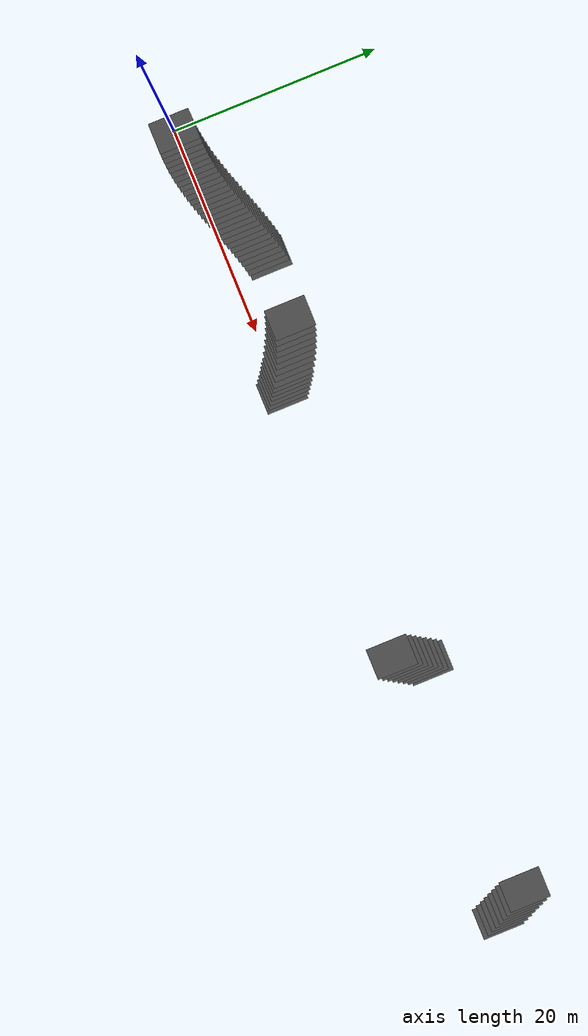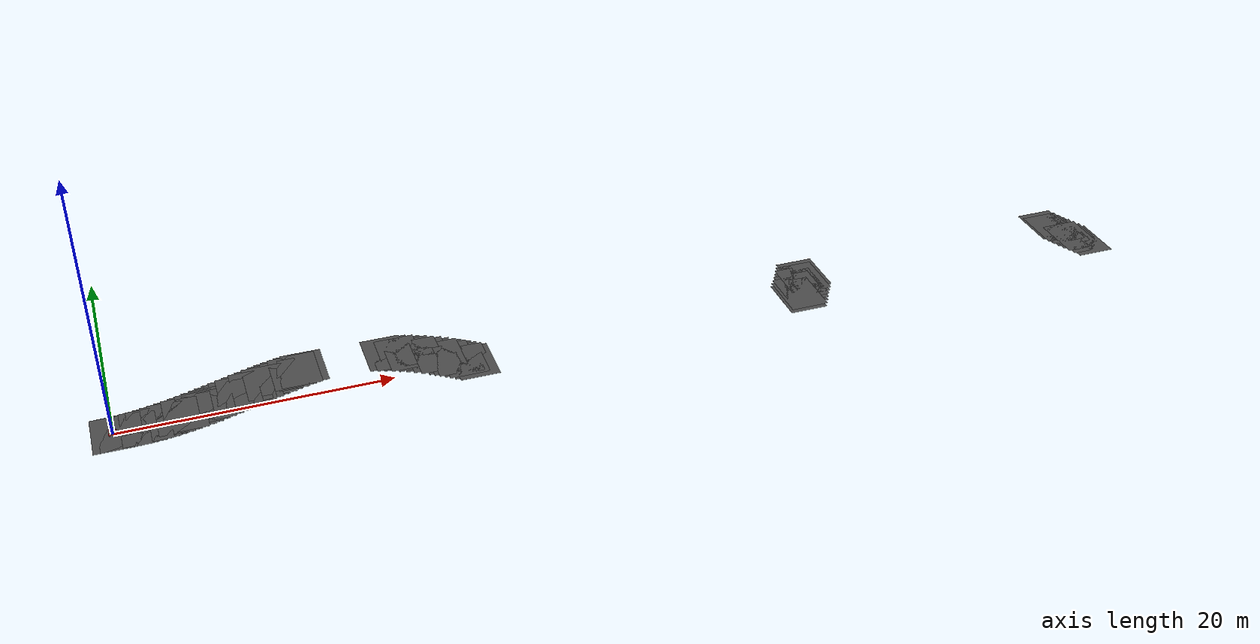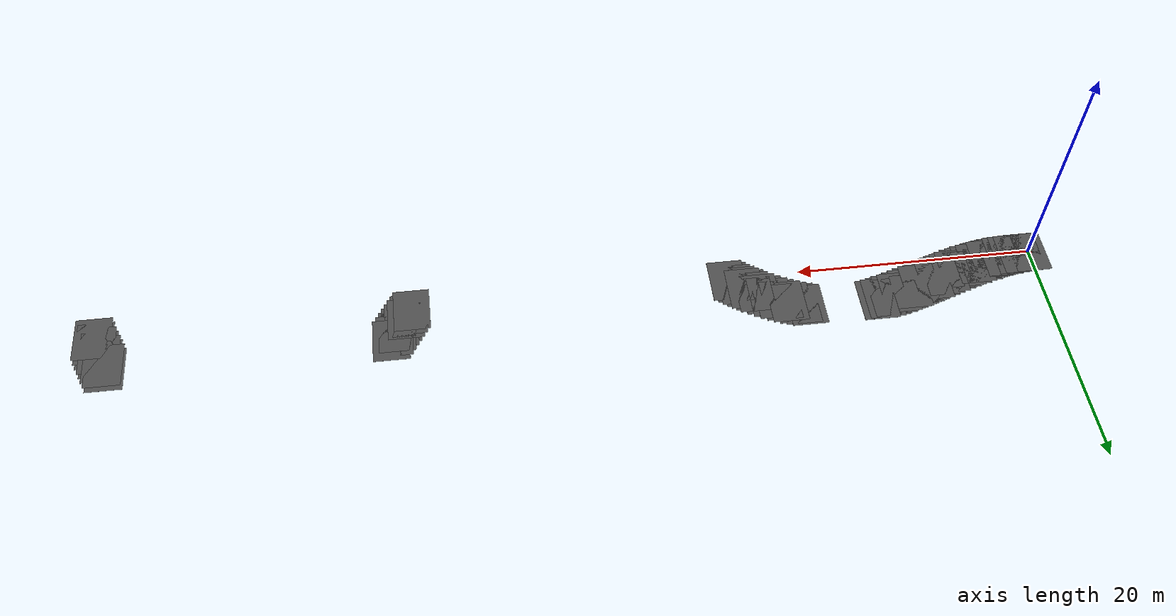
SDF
<sdf version="1.7">
 <world name="default">
  <model name="steer_bot">
   <link name="base_link">
    <inertial>
     <pose>0.00098 0.00098 0.001961 0 -0 0</pose>
     <mass>5.10001</mass>
     <inertia>
      <ixx>0.0429143</ixx>
      <ixy>-0.000245099</ixy>
      <ixz>-0.000490026</ixz>
      <iyy>0.109581</iyy>
      <iyz>-0.000490194</iyz>
      <izz>0.142158</izz>
     </inertia>
    </inertial>
    <collision name="base_link_collision"><geometry><box><size>0.5 0.3 0.1</size></box></geometry></collision>
    <collision name="base_link_fixed_joint_lump__camera_link_collision_1">
     <pose>-0.1 0 0.17 0 -0 0</pose>
     <geometry><box><size>0.05 0.05 0.05</size></box></geometry>
    </collision>
    <collision name="base_link_fixed_joint_lump__imu_box_collision_2">
     <pose>0 0 0.05 0 -0 0</pose>
     <geometry><box><size>0.05 0.05 0.05</size></box></geometry>
    </collision>
    <visual name="base_link_visual">
     <geometry><box><size>0.5 0.3 0.1</size></box></geometry>
     <material>
      <script><name>Gazebo/Green</name><uri>file://media/materials/scripts/gazebo.material</uri></script>
     </material>
    </visual>
    <visual name="base_link_fixed_joint_lump__camera_link_visual_1">
     <pose>-0.1 0 0.17 0 -0 0</pose>
     <geometry><box><size>0.05 0.05 0.05</size></box></geometry>
    </visual>
    <visual name="base_link_fixed_joint_lump__imu_box_visual_2">
     <pose>0 0 0.05 0 -0 0</pose>
     <geometry><box><size>0.05 0.05 0.05</size></box></geometry>
     <material>
      <script><name>Gazebo/White</name><uri>file://media/materials/scripts/gazebo.material</uri></script>
     </material>
    </visual>
    <sensor name="camera1" type="camera">
     <update_rate>30</update_rate>
     <camera name="head">
      <horizontal_fov>1.39626</horizontal_fov>
      <image><width>800</width><height>800</height><format>R8G8B8</format></image>
      <clip><near>0.02</near><far>300</far></clip>
      <noise><type>gaussian</type><mean>0</mean><stddev>0.007</stddev></noise>
     </camera>
     <plugin name="camera_controller" filename="libgazebo_ros_camera.so">
      <alwaysOn>1</alwaysOn>
      <updateRate>0.0</updateRate>
      <cameraName>rrbot/camera1</cameraName>
      <imageTopicName>image_raw</imageTopicName>
      <cameraInfoTopicName>camera_info</cameraInfoTopicName>
      <frameName>camera_link</frameName>
      <hackBaseline>0.07</hackBaseline>
      <distortionK1>0.0</distortionK1>
      <distortionK2>0.0</distortionK2>
      <distortionK3>0.0</distortionK3>
      <distortionT1>0.0</distortionT1>
      <distortionT2>0.0</distortionT2>
      <robotNamespace>/steer_bot/</robotNamespace>
     </plugin>
     <pose>-0.1 0 0.17 0 -0 0</pose>
    </sensor>
    <sensor name="imu_sensor" type="imu">
     <always_on>1</always_on>
     <update_rate>100</update_rate>
     <visualize>1</visualize>
     <topic>__default_topic__</topic>
     <plugin name="imu_plugin" filename="libgazebo_ros_imu_sensor.so">
      <topicName>imu</topicName>
      <bodyName>imu_link</bodyName>
      <updateRateHZ>10.0</updateRateHZ>
      <gaussianNoise>2.89e-08</gaussianNoise>
      <xyzOffset>0 0 0</xyzOffset>
      <rpyOffset>0 0 0</rpyOffset>
      <frameName>imu_link</frameName>
      <inertialOrientationAsReference>0</inertialOrientationAsReference>
      <robotNamespace>/steer_bot/</robotNamespace>
     </plugin>
     <pose>0 0 0.05 0 -0 0</pose>
    </sensor>
   </link>
   <joint name="front_left_steer_joint" type="revolute">
    <pose relative_to="base_link">0.2 0.2 0.12 0 -0 0</pose>
    <parent>base_link</parent>
    <child>front_left_steer_link</child>
    <axis>
     <xyz>0 0 1</xyz>
     <limit><lower>-0.785398</lower><upper>0.785398</upper><effort>10</effort><velocity>5</velocity></limit>
     <dynamics><spring_reference>0</spring_reference><spring_stiffness>0</spring_stiffness></dynamics>
    </axis>
   </joint>
   <link name="front_left_steer_link">
    <pose relative_to="front_left_steer_joint">0 0 0 0 -0 0</pose>
    <inertial>
     <mass>1</mass>
     <inertia>
      <ixx>0.000658333</ixx>
      <ixy>0</ixy>
      <ixz>0</ixz>
      <iyy>0.000658333</iyy>
      <iyz>0</iyz>
      <izz>0.00125</izz>
     </inertia>
    </inertial>
    <collision name="front_left_steer_link_collision">
     <geometry><cylinder><length>0.02</length><radius>0.05</radius></cylinder></geometry>
    </collision>
    <visual name="front_left_steer_link_visual">
     <geometry><cylinder><length>0.02</length><radius>0.05</radius></cylinder></geometry>
     <material>
      <script><name>Gazebo/Blue</name><uri>file://media/materials/scripts/gazebo.material</uri></script>
     </material>
    </visual>
   </link>
   <joint name="front_left_wheel_joint" type="revolute">
    <pose relative_to="front_left_steer_link">0 0 -0.12 -1.5708 0 0</pose>
    <parent>front_left_steer_link</parent>
    <child>front_left_wheel_link</child>
    <axis>
     <xyz>0 0 1</xyz>
     <limit><lower>-1e+16</lower><upper>1e+16</upper></limit>
     <dynamics><spring_reference>0</spring_reference><spring_stiffness>0</spring_stiffness></dynamics>
    </axis>
   </joint>
   <link name="front_left_wheel_link">
    <pose relative_to="front_left_wheel_joint">0 0 0 0 -0 0</pose>
    <inertial>
     <mass>1</mass>
     <inertia>
      <ixx>0.00303333</ixx>
      <ixy>0</ixy>
      <ixz>0</ixz>
      <iyy>0.00303333</iyy>
      <iyz>0</iyz>
      <izz>0.005</izz>
     </inertia>
    </inertial>
    <collision name="front_left_wheel_link_collision">
     <geometry><cylinder><length>0.08</length><radius>0.1</radius></cylinder></geometry>
    </collision>
    <visual name="front_left_wheel_link_visual">
     <geometry><cylinder><length>0.08</length><radius>0.1</radius></cylinder></geometry>
     <material>
      <script><name>Gazebo/Red</name><uri>file://media/materials/scripts/gazebo.material</uri></script>
     </material>
    </visual>
   </link>
   <joint name="front_right_steer_joint" type="revolute">
    <pose relative_to="base_link">0.2 -0.2 0.12 0 -0 0</pose>
    <parent>base_link</parent>
    <child>front_right_steer_link</child>
    <axis>
     <xyz>0 0 1</xyz>
     <limit><lower>-0.785398</lower><upper>0.785398</upper><effort>10</effort><velocity>5</velocity></limit>
     <dynamics><spring_reference>0</spring_reference><spring_stiffness>0</spring_stiffness></dynamics>
    </axis>
   </joint>
   <link name="front_right_steer_link">
    <pose relative_to="front_right_steer_joint">0 0 0 0 -0 0</pose>
    <inertial>
     <mass>1</mass>
     <inertia>
      <ixx>0.000658333</ixx>
      <ixy>0</ixy>
      <ixz>0</ixz>
      <iyy>0.000658333</iyy>
      <iyz>0</iyz>
      <izz>0.00125</izz>
     </inertia>
    </inertial>
    <collision name="front_right_steer_link_collision">
     <geometry><cylinder><length>0.02</length><radius>0.05</radius></cylinder></geometry>
    </collision>
    <visual name="front_right_steer_link_visual">
     <geometry><cylinder><length>0.02</length><radius>0.05</radius></cylinder></geometry>
     <material>
      <script><name>Gazebo/Blue</name><uri>file://media/materials/scripts/gazebo.material</uri></script>
     </material>
    </visual>
   </link>
   <joint name="front_right_wheel_joint" type="revolute">
    <pose relative_to="front_right_steer_link">0 0 -0.12 -1.5708 0 0</pose>
    <parent>front_right_steer_link</parent>
    <child>front_right_wheel_link</child>
    <axis>
     <xyz>0 0 1</xyz>
     <limit><lower>-1e+16</lower><upper>1e+16</upper></limit>
     <dynamics><spring_reference>0</spring_reference><spring_stiffness>0</spring_stiffness></dynamics>
    </axis>
   </joint>
   <link name="front_right_wheel_link">
    <pose relative_to="front_right_wheel_joint">0 0 0 0 -0 0</pose>
    <inertial>
     <mass>1</mass>
     <inertia>
      <ixx>0.00303333</ixx>
      <ixy>0</ixy>
      <ixz>0</ixz>
      <iyy>0.00303333</iyy>
      <iyz>0</iyz>
      <izz>0.005</izz>
     </inertia>
    </inertial>
    <collision name="front_right_wheel_link_collision">
     <geometry><cylinder><length>0.08</length><radius>0.1</radius></cylinder></geometry>
    </collision>
    <visual name="front_right_wheel_link_visual">
     <geometry><cylinder><length>0.08</length><radius>0.1</radius></cylinder></geometry>
     <material>
      <script><name>Gazebo/Red</name><uri>file://media/materials/scripts/gazebo.material</uri></script>
     </material>
    </visual>
   </link>
   <joint name="front_steer_joint" type="revolute">
    <pose relative_to="base_link">0.2 0 0.12 0 -0 0</pose>
    <parent>base_link</parent>
    <child>front_steer_link</child>
    <axis>
     <xyz>0 0 1</xyz>
     <limit><lower>-3.14159</lower><upper>3.14159</upper><effort>10</effort><velocity>5</velocity></limit>
     <dynamics><spring_reference>0</spring_reference><spring_stiffness>0</spring_stiffness></dynamics>
    </axis>
   </joint>
   <link name="front_steer_link">
    <pose relative_to="front_steer_joint">0 0 0 0 -0 0</pose>
    <inertial>
     <mass>1</mass>
     <inertia>
      <ixx>0.000658333</ixx>
      <ixy>0</ixy>
      <ixz>0</ixz>
      <iyy>0.000658333</iyy>
      <iyz>0</iyz>
      <izz>0.00125</izz>
     </inertia>
    </inertial>
    <collision name="front_steer_link_collision">
     <geometry><cylinder><length>0.02</length><radius>0.05</radius></cylinder></geometry>
    </collision>
    <visual name="front_steer_link_visual">
     <geometry><cylinder><length>0.02</length><radius>0.05</radius></cylinder></geometry>
     <material>
      <script><name>Gazebo/Yellow</name><uri>file://media/materials/scripts/gazebo.material</uri></script>
     </material>
    </visual>
   </link>
   <joint name="rear_left_wheel_joint" type="revolute">
    <pose relative_to="base_link">-0.2 0.2 0 -1.5708 0 0</pose>
    <parent>base_link</parent>
    <child>rear_left_wheel_link</child>
    <axis>
     <xyz>0 0 1</xyz>
     <limit><lower>-1e+16</lower><upper>1e+16</upper></limit>
     <dynamics><spring_reference>0</spring_reference><spring_stiffness>0</spring_stiffness></dynamics>
    </axis>
   </joint>
   <link name="rear_left_wheel_link">
    <pose relative_to="rear_left_wheel_joint">0 0 0 0 -0 0</pose>
    <inertial>
     <mass>1</mass>
     <inertia>
      <ixx>0.00303333</ixx>
      <ixy>0</ixy>
      <ixz>0</ixz>
      <iyy>0.00303333</iyy>
      <iyz>0</iyz>
      <izz>0.005</izz>
     </inertia>
    </inertial>
    <collision name="rear_left_wheel_link_collision">
     <geometry><cylinder><length>0.08</length><radius>0.1</radius></cylinder></geometry>
    </collision>
    <visual name="rear_left_wheel_link_visual">
     <geometry><cylinder><length>0.08</length><radius>0.1</radius></cylinder></geometry>
     <material>
      <script><name>Gazebo/Red</name><uri>file://media/materials/scripts/gazebo.material</uri></script>
     </material>
    </visual>
   </link>
   <joint name="rear_right_wheel_joint" type="revolute">
    <pose relative_to="base_link">-0.2 -0.2 0 -1.5708 0 0</pose>
    <parent>base_link</parent>
    <child>rear_right_wheel_link</child>
    <axis>
     <xyz>0 0 1</xyz>
     <limit><lower>-1e+16</lower><upper>1e+16</upper></limit>
     <dynamics><spring_reference>0</spring_reference><spring_stiffness>0</spring_stiffness></dynamics>
    </axis>
   </joint>
   <link name="rear_right_wheel_link">
    <pose relative_to="rear_right_wheel_joint">0 0 0 0 -0 0</pose>
    <inertial>
     <mass>1</mass>
     <inertia>
      <ixx>0.00303333</ixx>
      <ixy>0</ixy>
      <ixz>0</ixz>
      <iyy>0.00303333</iyy>
      <iyz>0</iyz>
      <izz>0.005</izz>
     </inertia>
    </inertial>
    <collision name="rear_right_wheel_link_collision">
     <geometry><cylinder><length>0.08</length><radius>0.1</radius></cylinder></geometry>
    </collision>
    <visual name="rear_right_wheel_link_visual">
     <geometry><cylinder><length>0.08</length><radius>0.1</radius></cylinder></geometry>
     <material>
      <script><name>Gazebo/Red</name><uri>file://media/materials/scripts/gazebo.material</uri></script>
     </material>
    </visual>
   </link>
   <joint name="rear_wheel_joint" type="revolute">
    <pose relative_to="base_link">-0.2 0 0 -1.5708 0 0</pose>
    <parent>base_link</parent>
    <child>rear_wheel_link</child>
    <axis>
     <xyz>0 0 1</xyz>
     <limit><lower>-1e+16</lower><upper>1e+16</upper></limit>
     <dynamics><spring_reference>0</spring_reference><spring_stiffness>0</spring_stiffness></dynamics>
    </axis>
   </joint>
   <link name="rear_wheel_link">
    <pose relative_to="rear_wheel_joint">0 0 0 0 -0 0</pose>
    <inertial>
     <mass>0.03125</mass>
     <inertia>
      <ixx>9.04948e-06</ixx>
      <ixy>0</ixy>
      <ixz>0</ixz>
      <iyy>9.04948e-06</iyy>
      <iyz>0</iyz>
      <izz>9.76563e-06</izz>
     </inertia>
    </inertial>
    <collision name="rear_wheel_link_collision">
     <geometry><cylinder><length>0.04</length><radius>0.025</radius></cylinder></geometry>
    </collision>
    <visual name="rear_wheel_link_visual">
     <geometry><cylinder><length>0.04</length><radius>0.025</radius></cylinder></geometry>
     <material>
      <script><name>Gazebo/Yellow</name><uri>file://media/materials/scripts/gazebo.material</uri></script>
     </material>
    </visual>
   </link>
   <static>0</static>
   <plugin name="gazebo_ros_control" filename="libgazebo_ros_control.so">
    <robotNamespace>/steer_bot</robotNamespace>
    <robotSimType>steer_bot_hardware_gazebo/SteerBotHardwareGazebo</robotSimType>
    <legacyModeNS>0</legacyModeNS>
   </plugin>
   <plugin name="p3d_base_controller" filename="libgazebo_ros_p3d.so">
    <alwaysOn>1</alwaysOn>
    <updateRate>50.0</updateRate>
    <bodyName>base_link</bodyName>
    <topicName>pose_ground_truth</topicName>
    <gaussianNoise>0.00</gaussianNoise>
    <frameName>world</frameName>
    <xyzOffsets>0 0 0</xyzOffsets>
    <rpyOffsets>0 0 0</rpyOffsets>
    <robotNamespace>/steer_bot/</robotNamespace>
   </plugin>
   <pose>-0.001108 -0.00022 0.105001 0 -2e-06 -0.000346</pose>
  </model>
  <model name="roadSegment_0_0">
   <static>1</static>
   <link name="link">
    <collision name="collision"><geometry><box><size>3 4 0.01</size></box></geometry></collision>
    <visual name="visual">
     <cast_shadows>0</cast_shadows>
     <geometry><box><size>3 4 0.01</size></box></geometry>
     <material>
      <script>
       <uri>model://asphalt_plane/materials/scripts</uri>
       <uri>model://asphalt_plane/materials/textures</uri>
       <name>vrc/asphalt</name>
      </script>
     </material>
    </visual>
   </link>
  </model>
  <model name="roadSegment_0_1">
   <static>1</static>
   <link name="link">
    <collision name="collision"><geometry><box><size>3 4 0.01</size></box></geometry></collision>
    <visual name="visual">
     <cast_shadows>0</cast_shadows>
     <geometry><box><size>3 4 0.01</size></box></geometry>
     <material>
      <script>
       <uri>model://asphalt_plane/materials/scripts</uri>
       <uri>model://asphalt_plane/materials/textures</uri>
       <name>vrc/asphalt</name>
      </script>
     </material>
    </visual>
   </link>
   <pose>0.5 0.01497 0 0 -0 0</pose>
  </model>
  <model name="roadSegment_1_0">
   <static>1</static>
   <link name="link">
    <collision name="collision"><geometry><box><size>3 4 0.01</size></box></geometry></collision>
    <visual name="visual">
     <cast_shadows>0</cast_shadows>
     <geometry><box><size>3 4 0.01</size></box></geometry>
     <material>
      <script>
       <uri>model://asphalt_plane/materials/scripts</uri>
       <uri>model://asphalt_plane/materials/textures</uri>
       <name>vrc/asphalt</name>
      </script>
     </material>
    </visual>
   </link>
   <pose>1 0.02994 0 0 -0 0</pose>
  </model>
  <model name="roadSegment_1_1">
   <static>1</static>
   <link name="link">
    <collision name="collision"><geometry><box><size>3 4 0.01</size></box></geometry></collision>
    <visual name="visual">
     <cast_shadows>0</cast_shadows>
     <geometry><box><size>3 4 0.01</size></box></geometry>
     <material>
      <script>
       <uri>model://asphalt_plane/materials/scripts</uri>
       <uri>model://asphalt_plane/materials/textures</uri>
       <name>vrc/asphalt</name>
      </script>
     </material>
    </visual>
   </link>
   <pose>1.5 0.074419 0 0 -0 0</pose>
  </model>
  <model name="roadSegment_2_0">
   <static>1</static>
   <link name="link">
    <collision name="collision"><geometry><box><size>3 4 0.01</size></box></geometry></collision>
    <visual name="visual">
     <cast_shadows>0</cast_shadows>
     <geometry><box><size>3 4 0.01</size></box></geometry>
     <material>
      <script>
       <uri>model://asphalt_plane/materials/scripts</uri>
       <uri>model://asphalt_plane/materials/textures</uri>
       <name>vrc/asphalt</name>
      </script>
     </material>
    </visual>
   </link>
   <pose>2 0.118898 0 0 -0 0</pose>
  </model>
  <model name="roadSegment_2_1">
   <static>1</static>
   <link name="link">
    <collision name="collision"><geometry><box><size>3 4 0.01</size></box></geometry></collision>
    <visual name="visual">
     <cast_shadows>0</cast_shadows>
     <geometry><box><size>3 4 0.01</size></box></geometry>
     <material>
      <script>
       <uri>model://asphalt_plane/materials/scripts</uri>
       <uri>model://asphalt_plane/materials/textures</uri>
       <name>vrc/asphalt</name>
      </script>
     </material>
    </visual>
   </link>
   <pose>2.5 0.191602 0 0 -0 0</pose>
  </model>
  <model name="roadSegment_3_0">
   <static>1</static>
   <link name="link">
    <collision name="collision"><geometry><box><size>3 4 0.01</size></box></geometry></collision>
    <visual name="visual">
     <cast_shadows>0</cast_shadows>
     <geometry><box><size>3 4 0.01</size></box></geometry>
     <material>
      <script>
       <uri>model://asphalt_plane/materials/scripts</uri>
       <uri>model://asphalt_plane/materials/textures</uri>
       <name>vrc/asphalt</name>
      </script>
     </material>
    </visual>
   </link>
   <pose>3 0.264307 0 0 -0 0</pose>
  </model>
  <model name="roadSegment_3_1">
   <static>1</static>
   <link name="link">
    <collision name="collision"><geometry><box><size>3 4 0.01</size></box></geometry></collision>
    <visual name="visual">
     <cast_shadows>0</cast_shadows>
     <geometry><box><size>3 4 0.01</size></box></geometry>
     <material>
      <script>
       <uri>model://asphalt_plane/materials/scripts</uri>
       <uri>model://asphalt_plane/materials/textures</uri>
       <name>vrc/asphalt</name>
      </script>
     </material>
    </visual>
   </link>
   <pose>3.5 0.363128 0 0 -0 0</pose>
  </model>
  <model name="roadSegment_4_0">
   <static>1</static>
   <link name="link">
    <collision name="collision"><geometry><box><size>3 4 0.01</size></box></geometry></collision>
    <visual name="visual">
     <cast_shadows>0</cast_shadows>
     <geometry><box><size>3 4 0.01</size></box></geometry>
     <material>
      <script>
       <uri>model://asphalt_plane/materials/scripts</uri>
       <uri>model://asphalt_plane/materials/textures</uri>
       <name>vrc/asphalt</name>
      </script>
     </material>
    </visual>
   </link>
   <pose>4 0.46195 0 0 -0 0</pose>
  </model>
  <model name="roadSegment_4_1">
   <static>1</static>
   <link name="link">
    <collision name="collision"><geometry><box><size>3 4 0.01</size></box></geometry></collision>
    <visual name="visual">
     <cast_shadows>0</cast_shadows>
     <geometry><box><size>3 4 0.01</size></box></geometry>
     <material>
      <script>
       <uri>model://asphalt_plane/materials/scripts</uri>
       <uri>model://asphalt_plane/materials/textures</uri>
       <name>vrc/asphalt</name>
      </script>
     </material>
    </visual>
   </link>
   <pose>4.5 0.584 0 0 -0 0</pose>
  </model>
  <model name="roadSegment_5_0">
   <static>1</static>
   <link name="link">
    <collision name="collision"><geometry><box><size>3 4 0.01</size></box></geometry></collision>
    <visual name="visual">
     <cast_shadows>0</cast_shadows>
     <geometry><box><size>3 4 0.01</size></box></geometry>
     <material>
      <script>
       <uri>model://asphalt_plane/materials/scripts</uri>
       <uri>model://asphalt_plane/materials/textures</uri>
       <name>vrc/asphalt</name>
      </script>
     </material>
    </visual>
   </link>
   <pose>5 0.706051 0 0 -0 0</pose>
  </model>
  <model name="roadSegment_5_1">
   <static>1</static>
   <link name="link">
    <collision name="collision"><geometry><box><size>3 4 0.01</size></box></geometry></collision>
    <visual name="visual">
     <cast_shadows>0</cast_shadows>
     <geometry><box><size>3 4 0.01</size></box></geometry>
     <material>
      <script>
       <uri>model://asphalt_plane/materials/scripts</uri>
       <uri>model://asphalt_plane/materials/textures</uri>
       <name>vrc/asphalt</name>
      </script>
     </material>
    </visual>
   </link>
   <pose>5.5 0.847726 0 0 -0 0</pose>
  </model>
  <model name="roadSegment_6_0">
   <static>1</static>
   <link name="link">
    <collision name="collision"><geometry><box><size>3 4 0.01</size></box></geometry></collision>
    <visual name="visual">
     <cast_shadows>0</cast_shadows>
     <geometry><box><size>3 4 0.01</size></box></geometry>
     <material>
      <script>
       <uri>model://asphalt_plane/materials/scripts</uri>
       <uri>model://asphalt_plane/materials/textures</uri>
       <name>vrc/asphalt</name>
      </script>
     </material>
    </visual>
   </link>
   <pose>6 0.989402 0 0 -0 0</pose>
  </model>
  <model name="roadSegment_6_1">
   <static>1</static>
   <link name="link">
    <collision name="collision"><geometry><box><size>3 4 0.01</size></box></geometry></collision>
    <visual name="visual">
     <cast_shadows>0</cast_shadows>
     <geometry><box><size>3 4 0.01</size></box></geometry>
     <material>
      <script>
       <uri>model://asphalt_plane/materials/scripts</uri>
       <uri>model://asphalt_plane/materials/textures</uri>
       <name>vrc/asphalt</name>
      </script>
     </material>
    </visual>
   </link>
   <pose>6.5 1.14646 0 0 -0 0</pose>
  </model>
  <model name="roadSegment_7_0">
   <static>1</static>
   <link name="link">
    <collision name="collision"><geometry><box><size>3 4 0.01</size></box></geometry></collision>
    <visual name="visual">
     <cast_shadows>0</cast_shadows>
     <geometry><box><size>3 4 0.01</size></box></geometry>
     <material>
      <script>
       <uri>model://asphalt_plane/materials/scripts</uri>
       <uri>model://asphalt_plane/materials/textures</uri>
       <name>vrc/asphalt</name>
      </script>
     </material>
    </visual>
   </link>
   <pose>7 1.30352 0 0 -0 0</pose>
  </model>
  <model name="roadSegment_7_1">
   <static>1</static>
   <link name="link">
    <collision name="collision"><geometry><box><size>3 4 0.01</size></box></geometry></collision>
    <visual name="visual">
     <cast_shadows>0</cast_shadows>
     <geometry><box><size>3 4 0.01</size></box></geometry>
     <material>
      <script>
       <uri>model://asphalt_plane/materials/scripts</uri>
       <uri>model://asphalt_plane/materials/textures</uri>
       <name>vrc/asphalt</name>
      </script>
     </material>
    </visual>
   </link>
   <pose>7.5 1.47117 0 0 -0 0</pose>
  </model>
  <model name="roadSegment_8_0">
   <static>1</static>
   <link name="link">
    <collision name="collision"><geometry><box><size>3 4 0.01</size></box></geometry></collision>
    <visual name="visual">
     <cast_shadows>0</cast_shadows>
     <geometry><box><size>3 4 0.01</size></box></geometry>
     <material>
      <script>
       <uri>model://asphalt_plane/materials/scripts</uri>
       <uri>model://asphalt_plane/materials/textures</uri>
       <name>vrc/asphalt</name>
      </script>
     </material>
    </visual>
   </link>
   <pose>8 1.63882 0 0 -0 0</pose>
  </model>
  <model name="roadSegment_8_1">
   <static>1</static>
   <link name="link">
    <collision name="collision"><geometry><box><size>3 4 0.01</size></box></geometry></collision>
    <visual name="visual">
     <cast_shadows>0</cast_shadows>
     <geometry><box><size>3 4 0.01</size></box></geometry>
     <material>
      <script>
       <uri>model://asphalt_plane/materials/scripts</uri>
       <uri>model://asphalt_plane/materials/textures</uri>
       <name>vrc/asphalt</name>
      </script>
     </material>
    </visual>
   </link>
   <pose>8.5 1.81184 0 0 -0 0</pose>
  </model>
  <model name="roadSegment_9_0">
   <static>1</static>
   <link name="link">
    <collision name="collision"><geometry><box><size>3 4 0.01</size></box></geometry></collision>
    <visual name="visual">
     <cast_shadows>0</cast_shadows>
     <geometry><box><size>3 4 0.01</size></box></geometry>
     <material>
      <script>
       <uri>model://asphalt_plane/materials/scripts</uri>
       <uri>model://asphalt_plane/materials/textures</uri>
       <name>vrc/asphalt</name>
      </script>
     </material>
    </visual>
   </link>
   <pose>9 1.98486 0 0 -0 0</pose>
  </model>
  <model name="roadSegment_9_1">
   <static>1</static>
   <link name="link">
    <collision name="collision"><geometry><box><size>3 4 0.01</size></box></geometry></collision>
    <visual name="visual">
     <cast_shadows>0</cast_shadows>
     <geometry><box><size>3 4 0.01</size></box></geometry>
     <material>
      <script>
       <uri>model://asphalt_plane/materials/scripts</uri>
       <uri>model://asphalt_plane/materials/textures</uri>
       <name>vrc/asphalt</name>
      </script>
     </material>
    </visual>
   </link>
   <pose>9.5 2.1577 0 0 -0 0</pose>
  </model>
  <model name="roadSegment_10_0">
   <static>1</static>
   <link name="link">
    <collision name="collision"><geometry><box><size>3 4 0.01</size></box></geometry></collision>
    <visual name="visual">
     <cast_shadows>0</cast_shadows>
     <geometry><box><size>3 4 0.01</size></box></geometry>
     <material>
      <script>
       <uri>model://asphalt_plane/materials/scripts</uri>
       <uri>model://asphalt_plane/materials/textures</uri>
       <name>vrc/asphalt</name>
      </script>
     </material>
    </visual>
   </link>
   <pose>10 2.33053 0 0 -0 0</pose>
  </model>
  <model name="roadSegment_10_1">
   <static>1</static>
   <link name="link">
    <collision name="collision"><geometry><box><size>3 4 0.01</size></box></geometry></collision>
    <visual name="visual">
     <cast_shadows>0</cast_shadows>
     <geometry><box><size>3 4 0.01</size></box></geometry>
     <material>
      <script>
       <uri>model://asphalt_plane/materials/scripts</uri>
       <uri>model://asphalt_plane/materials/textures</uri>
       <name>vrc/asphalt</name>
      </script>
     </material>
    </visual>
   </link>
   <pose>10.5 2.49743 0 0 -0 0</pose>
  </model>
  <model name="roadSegment_11_0">
   <static>1</static>
   <link name="link">
    <collision name="collision"><geometry><box><size>3 4 0.01</size></box></geometry></collision>
    <visual name="visual">
     <cast_shadows>0</cast_shadows>
     <geometry><box><size>3 4 0.01</size></box></geometry>
     <material>
      <script>
       <uri>model://asphalt_plane/materials/scripts</uri>
       <uri>model://asphalt_plane/materials/textures</uri>
       <name>vrc/asphalt</name>
      </script>
     </material>
    </visual>
   </link>
   <pose>11 2.66433 0 0 -0 0</pose>
  </model>
  <model name="roadSegment_11_1">
   <static>1</static>
   <link name="link">
    <collision name="collision"><geometry><box><size>3 4 0.01</size></box></geometry></collision>
    <visual name="visual">
     <cast_shadows>0</cast_shadows>
     <geometry><box><size>3 4 0.01</size></box></geometry>
     <material>
      <script>
       <uri>model://asphalt_plane/materials/scripts</uri>
       <uri>model://asphalt_plane/materials/textures</uri>
       <name>vrc/asphalt</name>
      </script>
     </material>
    </visual>
   </link>
   <pose>11.5 2.81946 0 0 -0 0</pose>
  </model>
  <model name="roadSegment_12_0">
   <static>1</static>
   <link name="link">
    <collision name="collision"><geometry><box><size>3 4 0.01</size></box></geometry></collision>
    <visual name="visual">
     <cast_shadows>0</cast_shadows>
     <geometry><box><size>3 4 0.01</size></box></geometry>
     <material>
      <script>
       <uri>model://asphalt_plane/materials/scripts</uri>
       <uri>model://asphalt_plane/materials/textures</uri>
       <name>vrc/asphalt</name>
      </script>
     </material>
    </visual>
   </link>
   <pose>12 2.9746 0 0 -0 0</pose>
  </model>
  <model name="roadSegment_12_1">
   <static>1</static>
   <link name="link">
    <collision name="collision"><geometry><box><size>3 4 0.01</size></box></geometry></collision>
    <visual name="visual">
     <cast_shadows>0</cast_shadows>
     <geometry><box><size>3 4 0.01</size></box></geometry>
     <material>
      <script>
       <uri>model://asphalt_plane/materials/scripts</uri>
       <uri>model://asphalt_plane/materials/textures</uri>
       <name>vrc/asphalt</name>
      </script>
     </material>
    </visual>
   </link>
   <pose>12.5 3.11222 0 0 -0 0</pose>
  </model>
  <model name="roadSegment_13_0">
   <static>1</static>
   <link name="link">
    <collision name="collision"><geometry><box><size>3 4 0.01</size></box></geometry></collision>
    <visual name="visual">
     <cast_shadows>0</cast_shadows>
     <geometry><box><size>3 4 0.01</size></box></geometry>
     <material>
      <script>
       <uri>model://asphalt_plane/materials/scripts</uri>
       <uri>model://asphalt_plane/materials/textures</uri>
       <name>vrc/asphalt</name>
      </script>
     </material>
    </visual>
   </link>
   <pose>13 3.24983 0 0 -0 0</pose>
  </model>
  <model name="roadSegment_13_1">
   <static>1</static>
   <link name="link">
    <collision name="collision"><geometry><box><size>3 4 0.01</size></box></geometry></collision>
    <visual name="visual">
     <cast_shadows>0</cast_shadows>
     <geometry><box><size>3 4 0.01</size></box></geometry>
     <material>
      <script>
       <uri>model://asphalt_plane/materials/scripts</uri>
       <uri>model://asphalt_plane/materials/textures</uri>
       <name>vrc/asphalt</name>
      </script>
     </material>
    </visual>
   </link>
   <pose>13.5 3.36436 0 0 -0 0</pose>
  </model>
  <model name="roadSegment_14_0">
   <static>1</static>
   <link name="link">
    <collision name="collision"><geometry><box><size>3 4 0.01</size></box></geometry></collision>
    <visual name="visual">
     <cast_shadows>0</cast_shadows>
     <geometry><box><size>3 4 0.01</size></box></geometry>
     <material>
      <script>
       <uri>model://asphalt_plane/materials/scripts</uri>
       <uri>model://asphalt_plane/materials/textures</uri>
       <name>vrc/asphalt</name>
      </script>
     </material>
    </visual>
   </link>
   <pose>14 3.47889 0 0 -0 0</pose>
  </model>
  <model name="roadSegment_20_0">
   <static>1</static>
   <link name="link">
    <collision name="collision"><geometry><box><size>3 4 0.01</size></box></geometry></collision>
    <visual name="visual">
     <cast_shadows>0</cast_shadows>
     <geometry><box><size>3 4 0.01</size></box></geometry>
     <material>
      <script>
       <uri>model://asphalt_plane/materials/scripts</uri>
       <uri>model://asphalt_plane/materials/textures</uri>
       <name>vrc/asphalt</name>
      </script>
     </material>
    </visual>
   </link>
   <pose>20 3.37377 0 0 -0 0</pose>
  </model>
  <model name="roadSegment_20_1">
   <static>1</static>
   <link name="link">
    <collision name="collision"><geometry><box><size>3 4 0.01</size></box></geometry></collision>
    <visual name="visual">
     <cast_shadows>0</cast_shadows>
     <geometry><box><size>3 4 0.01</size></box></geometry>
     <material>
      <script>
       <uri>model://asphalt_plane/materials/scripts</uri>
       <uri>model://asphalt_plane/materials/textures</uri>
       <name>vrc/asphalt</name>
      </script>
     </material>
    </visual>
   </link>
   <pose>20.5 3.21335 0 0 -0 0</pose>
  </model>
  <model name="roadSegment_21_0">
   <static>1</static>
   <link name="link">
    <collision name="collision"><geometry><box><size>3 4 0.01</size></box></geometry></collision>
    <visual name="visual">
     <cast_shadows>0</cast_shadows>
     <geometry><box><size>3 4 0.01</size></box></geometry>
     <material>
      <script>
       <uri>model://asphalt_plane/materials/scripts</uri>
       <uri>model://asphalt_plane/materials/textures</uri>
       <name>vrc/asphalt</name>
      </script>
     </material>
    </visual>
   </link>
   <pose>21 3.05293 0 0 -0 0</pose>
  </model>
  <model name="roadSegment_21_1">
   <static>1</static>
   <link name="link">
    <collision name="collision"><geometry><box><size>3 4 0.01</size></box></geometry></collision>
    <visual name="visual">
     <cast_shadows>0</cast_shadows>
     <geometry><box><size>3 4 0.01</size></box></geometry>
     <material>
      <script>
       <uri>model://asphalt_plane/materials/scripts</uri>
       <uri>model://asphalt_plane/materials/textures</uri>
       <name>vrc/asphalt</name>
      </script>
     </material>
    </visual>
   </link>
   <pose>21.5 2.84618 0 0 -0 0</pose>
  </model>
  <model name="roadSegment_22_0">
   <static>1</static>
   <link name="link">
    <collision name="collision"><geometry><box><size>3 4 0.01</size></box></geometry></collision>
    <visual name="visual">
     <cast_shadows>0</cast_shadows>
     <geometry><box><size>3 4 0.01</size></box></geometry>
     <material>
      <script>
       <uri>model://asphalt_plane/materials/scripts</uri>
       <uri>model://asphalt_plane/materials/textures</uri>
       <name>vrc/asphalt</name>
      </script>
     </material>
    </visual>
   </link>
   <pose>22 2.63943 0 0 -0 0</pose>
  </model>
  <model name="roadSegment_22_1">
   <static>1</static>
   <link name="link">
    <collision name="collision"><geometry><box><size>3 4 0.01</size></box></geometry></collision>
    <visual name="visual">
     <cast_shadows>0</cast_shadows>
     <geometry><box><size>3 4 0.01</size></box></geometry>
     <material>
      <script>
       <uri>model://asphalt_plane/materials/scripts</uri>
       <uri>model://asphalt_plane/materials/textures</uri>
       <name>vrc/asphalt</name>
      </script>
     </material>
    </visual>
   </link>
   <pose>22.5 2.38741 0 0 -0 0</pose>
  </model>
  <model name="roadSegment_23_0">
   <static>1</static>
   <link name="link">
    <collision name="collision"><geometry><box><size>3 4 0.01</size></box></geometry></collision>
    <visual name="visual">
     <cast_shadows>0</cast_shadows>
     <geometry><box><size>3 4 0.01</size></box></geometry>
     <material>
      <script>
       <uri>model://asphalt_plane/materials/scripts</uri>
       <uri>model://asphalt_plane/materials/textures</uri>
       <name>vrc/asphalt</name>
      </script>
     </material>
    </visual>
   </link>
   <pose>23 2.1354 0 0 -0 0</pose>
  </model>
  <model name="roadSegment_23_1">
   <static>1</static>
   <link name="link">
    <collision name="collision"><geometry><box><size>3 4 0.01</size></box></geometry></collision>
    <visual name="visual">
     <cast_shadows>0</cast_shadows>
     <geometry><box><size>3 4 0.01</size></box></geometry>
     <material>
      <script>
       <uri>model://asphalt_plane/materials/scripts</uri>
       <uri>model://asphalt_plane/materials/textures</uri>
       <name>vrc/asphalt</name>
      </script>
     </material>
    </visual>
   </link>
   <pose>23.5 1.84022 0 0 -0 0</pose>
  </model>
  <model name="roadSegment_24_0">
   <static>1</static>
   <link name="link">
    <collision name="collision"><geometry><box><size>3 4 0.01</size></box></geometry></collision>
    <visual name="visual">
     <cast_shadows>0</cast_shadows>
     <geometry><box><size>3 4 0.01</size></box></geometry>
     <material>
      <script>
       <uri>model://asphalt_plane/materials/scripts</uri>
       <uri>model://asphalt_plane/materials/textures</uri>
       <name>vrc/asphalt</name>
      </script>
     </material>
    </visual>
   </link>
   <pose>24 1.54504 0 0 -0 0</pose>
  </model>
  <model name="roadSegment_24_1">
   <static>1</static>
   <link name="link">
    <collision name="collision"><geometry><box><size>3 4 0.01</size></box></geometry></collision>
    <visual name="visual">
     <cast_shadows>0</cast_shadows>
     <geometry><box><size>3 4 0.01</size></box></geometry>
     <material>
      <script>
       <uri>model://asphalt_plane/materials/scripts</uri>
       <uri>model://asphalt_plane/materials/textures</uri>
       <name>vrc/asphalt</name>
      </script>
     </material>
    </visual>
   </link>
   <pose>24.3333 1.32155 0 0 -0 0</pose>
  </model>
  <model name="roadSegment_24_2">
   <static>1</static>
   <link name="link">
    <collision name="collision"><geometry><box><size>3 4 0.01</size></box></geometry></collision>
    <visual name="visual">
     <cast_shadows>0</cast_shadows>
     <geometry><box><size>3 4 0.01</size></box></geometry>
     <material>
      <script>
       <uri>model://asphalt_plane/materials/scripts</uri>
       <uri>model://asphalt_plane/materials/textures</uri>
       <name>vrc/asphalt</name>
      </script>
     </material>
    </visual>
   </link>
   <pose>24.6667 1.09806 0 0 -0 0</pose>
  </model>
  <model name="roadSegment_25_0">
   <static>1</static>
   <link name="link">
    <collision name="collision"><geometry><box><size>3 4 0.01</size></box></geometry></collision>
    <visual name="visual">
     <cast_shadows>0</cast_shadows>
     <geometry><box><size>3 4 0.01</size></box></geometry>
     <material>
      <script>
       <uri>model://asphalt_plane/materials/scripts</uri>
       <uri>model://asphalt_plane/materials/textures</uri>
       <name>vrc/asphalt</name>
      </script>
     </material>
    </visual>
   </link>
   <pose>25 0.874572 0 0 -0 0</pose>
  </model>
  <model name="roadSegment_25_1">
   <static>1</static>
   <link name="link">
    <collision name="collision"><geometry><box><size>3 4 0.01</size></box></geometry></collision>
    <visual name="visual">
     <cast_shadows>0</cast_shadows>
     <geometry><box><size>3 4 0.01</size></box></geometry>
     <material>
      <script>
       <uri>model://asphalt_plane/materials/scripts</uri>
       <uri>model://asphalt_plane/materials/textures</uri>
       <name>vrc/asphalt</name>
      </script>
     </material>
    </visual>
   </link>
   <pose>25.3333 0.627124 0 0 -0 0</pose>
  </model>
  <model name="roadSegment_25_2">
   <static>1</static>
   <link name="link">
    <collision name="collision"><geometry><box><size>3 4 0.01</size></box></geometry></collision>
    <visual name="visual">
     <cast_shadows>0</cast_shadows>
     <geometry><box><size>3 4 0.01</size></box></geometry>
     <material>
      <script>
       <uri>model://asphalt_plane/materials/scripts</uri>
       <uri>model://asphalt_plane/materials/textures</uri>
       <name>vrc/asphalt</name>
      </script>
     </material>
    </visual>
   </link>
   <pose>25.6667 0.379676 0 0 -0 0</pose>
  </model>
  <model name="roadSegment_26_0">
   <static>1</static>
   <link name="link">
    <collision name="collision"><geometry><box><size>3 4 0.01</size></box></geometry></collision>
    <visual name="visual">
     <cast_shadows>0</cast_shadows>
     <geometry><box><size>3 4 0.01</size></box></geometry>
     <material>
      <script>
       <uri>model://asphalt_plane/materials/scripts</uri>
       <uri>model://asphalt_plane/materials/textures</uri>
       <name>vrc/asphalt</name>
      </script>
     </material>
    </visual>
   </link>
   <pose>26 0.132228 0 0 -0 0</pose>
  </model>
  <model name="roadSegment_52_2">
   <static>1</static>
   <link name="link">
    <collision name="collision"><geometry><box><size>3 4 0.01</size></box></geometry></collision>
    <visual name="visual">
     <cast_shadows>0</cast_shadows>
     <geometry><box><size>3 4 0.01</size></box></geometry>
     <material>
      <script>
       <uri>model://asphalt_plane/materials/scripts</uri>
       <uri>model://asphalt_plane/materials/textures</uri>
       <name>vrc/asphalt</name>
      </script>
     </material>
    </visual>
   </link>
   <pose>52.5 0.260805 0 0 -0 0</pose>
  </model>
  <model name="roadSegment_52_3">
   <static>1</static>
   <link name="link">
    <collision name="collision"><geometry><box><size>3 4 0.01</size></box></geometry></collision>
    <visual name="visual">
     <cast_shadows>0</cast_shadows>
     <geometry><box><size>3 4 0.01</size></box></geometry>
     <material>
      <script>
       <uri>model://asphalt_plane/materials/scripts</uri>
       <uri>model://asphalt_plane/materials/textures</uri>
       <name>vrc/asphalt</name>
      </script>
     </material>
    </visual>
   </link>
   <pose>52.75 0.655609 0 0 -0 0</pose>
  </model>
  <model name="roadSegment_53_0">
   <static>1</static>
   <link name="link">
    <collision name="collision"><geometry><box><size>3 4 0.01</size></box></geometry></collision>
    <visual name="visual">
     <cast_shadows>0</cast_shadows>
     <geometry><box><size>3 4 0.01</size></box></geometry>
     <material>
      <script>
       <uri>model://asphalt_plane/materials/scripts</uri>
       <uri>model://asphalt_plane/materials/textures</uri>
       <name>vrc/asphalt</name>
      </script>
     </material>
    </visual>
   </link>
   <pose>53 1.05041 0 0 -0 0</pose>
  </model>
  <model name="roadSegment_53_1">
   <static>1</static>
   <link name="link">
    <collision name="collision"><geometry><box><size>3 4 0.01</size></box></geometry></collision>
    <visual name="visual">
     <cast_shadows>0</cast_shadows>
     <geometry><box><size>3 4 0.01</size></box></geometry>
     <material>
      <script>
       <uri>model://asphalt_plane/materials/scripts</uri>
       <uri>model://asphalt_plane/materials/textures</uri>
       <name>vrc/asphalt</name>
      </script>
     </material>
    </visual>
   </link>
   <pose>53.25 1.45636 0 0 -0 0</pose>
  </model>
  <model name="roadSegment_53_2">
   <static>1</static>
   <link name="link">
    <collision name="collision"><geometry><box><size>3 4 0.01</size></box></geometry></collision>
    <visual name="visual">
     <cast_shadows>0</cast_shadows>
     <geometry><box><size>3 4 0.01</size></box></geometry>
     <material>
      <script>
       <uri>model://asphalt_plane/materials/scripts</uri>
       <uri>model://asphalt_plane/materials/textures</uri>
       <name>vrc/asphalt</name>
      </script>
     </material>
    </visual>
   </link>
   <pose>53.5 1.86231 0 0 -0 0</pose>
  </model>
  <model name="roadSegment_53_3">
   <static>1</static>
   <link name="link">
    <collision name="collision"><geometry><box><size>3 4 0.01</size></box></geometry></collision>
    <visual name="visual">
     <cast_shadows>0</cast_shadows>
     <geometry><box><size>3 4 0.01</size></box></geometry>
     <material>
      <script>
       <uri>model://asphalt_plane/materials/scripts</uri>
       <uri>model://asphalt_plane/materials/textures</uri>
       <name>vrc/asphalt</name>
      </script>
     </material>
    </visual>
   </link>
   <pose>53.75 2.26825 0 0 -0 0</pose>
  </model>
  <model name="roadSegment_54_0">
   <static>1</static>
   <link name="link">
    <collision name="collision"><geometry><box><size>3 4 0.01</size></box></geometry></collision>
    <visual name="visual">
     <cast_shadows>0</cast_shadows>
     <geometry><box><size>3 4 0.01</size></box></geometry>
     <material>
      <script>
       <uri>model://asphalt_plane/materials/scripts</uri>
       <uri>model://asphalt_plane/materials/textures</uri>
       <name>vrc/asphalt</name>
      </script>
     </material>
    </visual>
   </link>
   <pose>54 2.6742 0 0 -0 0</pose>
  </model>
  <model name="roadSegment_54_1">
   <static>1</static>
   <link name="link">
    <collision name="collision"><geometry><box><size>3 4 0.01</size></box></geometry></collision>
    <visual name="visual">
     <cast_shadows>0</cast_shadows>
     <geometry><box><size>3 4 0.01</size></box></geometry>
     <material>
      <script>
       <uri>model://asphalt_plane/materials/scripts</uri>
       <uri>model://asphalt_plane/materials/textures</uri>
       <name>vrc/asphalt</name>
      </script>
     </material>
    </visual>
   </link>
   <pose>54.25 3.0852 0 0 -0 0</pose>
  </model>
  <model name="roadSegment_77_0">
   <static>1</static>
   <link name="link">
    <collision name="collision"><geometry><box><size>3 4 0.01</size></box></geometry></collision>
    <visual name="visual">
     <cast_shadows>0</cast_shadows>
     <geometry><box><size>3 4 0.01</size></box></geometry>
     <material>
      <script>
       <uri>model://asphalt_plane/materials/scripts</uri>
       <uri>model://asphalt_plane/materials/textures</uri>
       <name>vrc/asphalt</name>
      </script>
     </material>
    </visual>
   </link>
   <pose>77 3.46678 0 0 -0 0</pose>
  </model>
  <model name="roadSegment_77_1">
   <static>1</static>
   <link name="link">
    <collision name="collision"><geometry><box><size>3 4 0.01</size></box></geometry></collision>
    <visual name="visual">
     <cast_shadows>0</cast_shadows>
     <geometry><box><size>3 4 0.01</size></box></geometry>
     <material>
      <script>
       <uri>model://asphalt_plane/materials/scripts</uri>
       <uri>model://asphalt_plane/materials/textures</uri>
       <name>vrc/asphalt</name>
      </script>
     </material>
    </visual>
   </link>
   <pose>77.2 3.0113 0 0 -0 0</pose>
  </model>
  <model name="roadSegment_77_2">
   <static>1</static>
   <link name="link">
    <collision name="collision"><geometry><box><size>3 4 0.01</size></box></geometry></collision>
    <visual name="visual">
     <cast_shadows>0</cast_shadows>
     <geometry><box><size>3 4 0.01</size></box></geometry>
     <material>
      <script>
       <uri>model://asphalt_plane/materials/scripts</uri>
       <uri>model://asphalt_plane/materials/textures</uri>
       <name>vrc/asphalt</name>
      </script>
     </material>
    </visual>
   </link>
   <pose>77.4 2.55583 0 0 -0 0</pose>
  </model>
  <model name="roadSegment_77_3">
   <static>1</static>
   <link name="link">
    <collision name="collision"><geometry><box><size>3 4 0.01</size></box></geometry></collision>
    <visual name="visual">
     <cast_shadows>0</cast_shadows>
     <geometry><box><size>3 4 0.01</size></box></geometry>
     <material>
      <script>
       <uri>model://asphalt_plane/materials/scripts</uri>
       <uri>model://asphalt_plane/materials/textures</uri>
       <name>vrc/asphalt</name>
      </script>
     </material>
    </visual>
   </link>
   <pose>77.6 2.10035 0 0 -0 0</pose>
  </model>
  <model name="roadSegment_77_4">
   <static>1</static>
   <link name="link">
    <collision name="collision"><geometry><box><size>3 4 0.01</size></box></geometry></collision>
    <visual name="visual">
     <cast_shadows>0</cast_shadows>
     <geometry><box><size>3 4 0.01</size></box></geometry>
     <material>
      <script>
       <uri>model://asphalt_plane/materials/scripts</uri>
       <uri>model://asphalt_plane/materials/textures</uri>
       <name>vrc/asphalt</name>
      </script>
     </material>
    </visual>
   </link>
   <pose>77.8 1.64487 0 0 -0 0</pose>
  </model>
  <model name="roadSegment_78_0">
   <static>1</static>
   <link name="link">
    <collision name="collision"><geometry><box><size>3 4 0.01</size></box></geometry></collision>
    <visual name="visual">
     <cast_shadows>0</cast_shadows>
     <geometry><box><size>3 4 0.01</size></box></geometry>
     <material>
      <script>
       <uri>model://asphalt_plane/materials/scripts</uri>
       <uri>model://asphalt_plane/materials/textures</uri>
       <name>vrc/asphalt</name>
      </script>
     </material>
    </visual>
   </link>
   <pose>78 1.18939 0 0 -0 0</pose>
  </model>
  <model name="roadSegment_78_1">
   <static>1</static>
   <link name="link">
    <collision name="collision"><geometry><box><size>3 4 0.01</size></box></geometry></collision>
    <visual name="visual">
     <cast_shadows>0</cast_shadows>
     <geometry><box><size>3 4 0.01</size></box></geometry>
     <material>
      <script>
       <uri>model://asphalt_plane/materials/scripts</uri>
       <uri>model://asphalt_plane/materials/textures</uri>
       <name>vrc/asphalt</name>
      </script>
     </material>
    </visual>
   </link>
   <pose>78.2 0.718539 0 0 -0 0</pose>
  </model>
  <model name="roadSegment_78_2">
   <static>1</static>
   <link name="link">
    <collision name="collision"><geometry><box><size>3 4 0.01</size></box></geometry></collision>
    <visual name="visual">
     <cast_shadows>0</cast_shadows>
     <geometry><box><size>3 4 0.01</size></box></geometry>
     <material>
      <script>
       <uri>model://asphalt_plane/materials/scripts</uri>
       <uri>model://asphalt_plane/materials/textures</uri>
       <name>vrc/asphalt</name>
      </script>
     </material>
    </visual>
   </link>
   <pose>78.4 0.247684 0 0 -0 0</pose>
  </model>
 </world>
</sdf>
